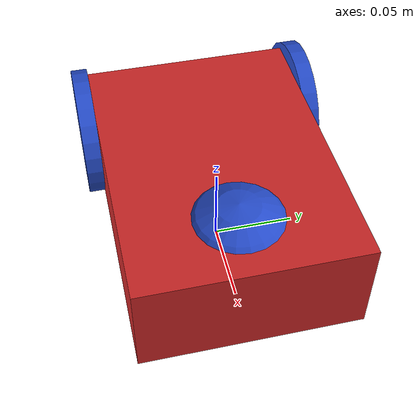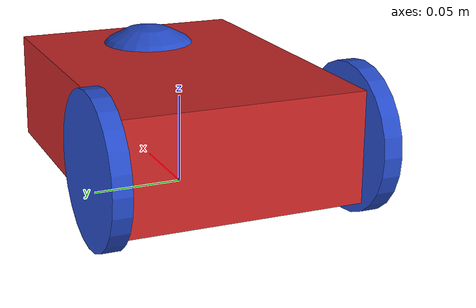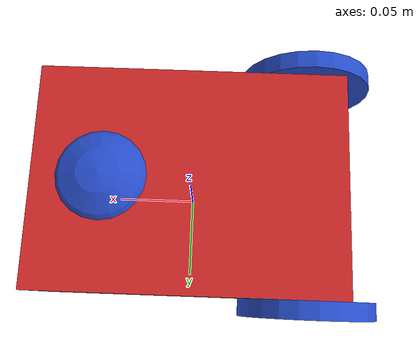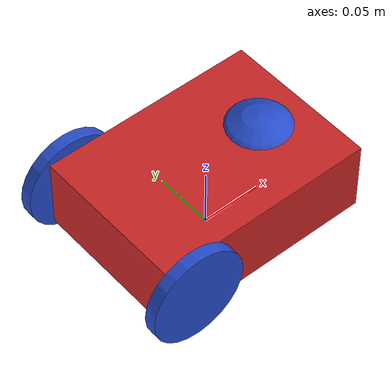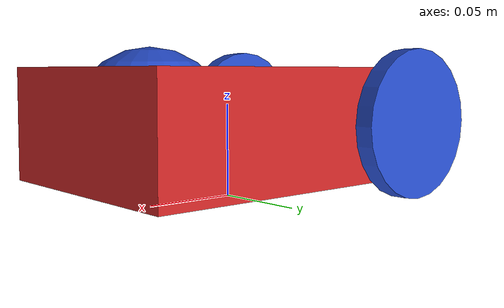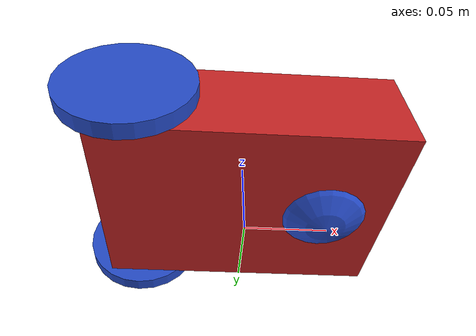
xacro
<?xml version="1.0"?>

<robot name="opponent" xmlns:xacro="http://www.ros.org/wiki/xacro">

    <!--   Geometry and constants   -->

    <!-- Pi -->
    <xacro:property name="pi_const" value="3.14159265" />

    <!-- Body Dimensions -->
    <xacro:property name="a" value="0.18" />
    <xacro:property name="b" value="0.06" />
    <xacro:property name="c" value="0.13" />

    <!-- Wheel and caster radius -->
    <xacro:property name="r" value="0.04" />

    <!-- Wheel width -->
    <xacro:property name="d" value="0.01" />

    <xacro:property name="s1" value="${r}" />
    <xacro:property name="s2" value="${a/2.0-r/2.0}" />
    <xacro:property name="s3" value="${a/2.0-r}" />
    <xacro:property name="s4" value="${c/2.0+d/2.0}" />

    <!--      Mass and inertia      -->

    <!-- Material Density -->
    <!-- body -->
    <xacro:property name="d1" value="1430.0" />
    <!-- wheel -->
    <xacro:property name="d2" value="1430.0" />
    <!-- caster -->
    <xacro:property name="d3" value="1430.0" />

    <!-- Mass -->
    <!-- body cuboid-->
    <xacro:property name="m1" value="${d1*a*b*c}" />
    <!-- wheel cylinder-->
    <xacro:property name="m2" value="${d2*pi_const*r*r*d}" />
    <!-- caster sphere -->
    <xacro:property name="m3" value="${d3*(4.0/3.0)*pi_const*r*r*r}" />

    <!-- Inertia -->
    <!-- body cuboid-->
    <xacro:property name="Ix_body" value="${(1.0/12.0)*m1*(b*b+c*c)}" />
    <xacro:property name="Iy_body" value="${(1.0/12.0)*m1*(a*a+b*b)}" />
    <xacro:property name="Iz_body" value="${(1.0/12.0)*m1*(a*a+c*c)}" />
    <!-- wheel cylinder-->
    <xacro:property name="Iz_wheel" value="${0.5*m2*r*r}" />
    <xacro:property name="I_wheel" value="${(1.0/12.0)*m2*(3.0*r*r+d*d)}" />
    <!-- caster sphere -->
    <xacro:property name="I_caster" value="${(2.0/5.0)*m3*r*r}" />

    <!-- Complete inertia -->
    <!-- body cuboid-->
    <xacro:macro name="inertia_body">
        <inertial>
            <!-- Displacement and orientation of the center of the mass frame of the link with respect to parent coordinate system -->
            <origin rpy="0 0 0" xyz="0 0 ${s1}"/>
            <mass value="${m1}"/>
            <inertia ixx="${Ix_body}" ixy="0.0" ixz="0.0" iyy="${Iy_body}" iyz="0.0" izz="${Iz_body}" />
        </inertial>
    </xacro:macro>

    <!-- wheel cylinder-->
    <xacro:macro name="inertia_wheel">
        <inertial>
            <!-- Displacement and orientation of the center of the mass frame of the link with respect to parent coordinate system -->
            <origin rpy="${pi_const/2.0} 0 0" xyz="0 0 0"/> <!-- rpy in radiants -->
            <mass value="${m2}"/>
            <inertia ixx="${I_wheel}" ixy="0.0" ixz="0.0" iyy="${I_wheel}" iyz="0.0" izz="${Iz_wheel}" />
        </inertial>
    </xacro:macro>

    <!-- caster sphere -->
    <xacro:macro name="inertia_caster">
        <inertial>
            <!-- Displacement and orientation of the center of the mass frame of the link with respect to parent coordinate system -->
            <origin rpy="0 0 0" xyz="0 0 0"/> <!-- rpy in radiants -->
            <mass value="${m3}"/>
            <inertia ixx="${I_caster}" ixy="0.0" ixz="0.0" iyy="${I_caster}" iyz="0.0" izz="${I_caster}" />
        </inertial>
    </xacro:macro>

    <!--  Include additional files  -->

    <!-- Gazebo file for extra Gazebo options and motion driver-->
    <xacro:include filename="$(find robofetz_gazebo)/models/simple_diff_drive_opponent/simple_diff_drive_opponent.gazebo" />

    <!--  Define links and joints   -->

    <!-- Fictious link of the robot - we need to have this link otherwise Gazebo will complain -->
    <link name="base_footprint"> </link>
    <joint name="body_link_joint" type="fixed">
        <parent link="base_footprint"/>
        <child link="body_link"/>
    </joint>

    <!-- Body link of the robot -->
    <link name="body_link">

        <visual>
            <geometry>
                <box size="${a} ${c} ${b}" />
            </geometry>
            <!-- Displacement and orientation of the geometric center of the link with respec to the parent link -->
            <origin rpy="0 0 0" xyz="0 0 ${s1}"/>
        </visual>

        <collision>
            <geometry>
                <box size="${a} ${c} ${b}" />
            </geometry>
            <origin rpy="0 0 0" xyz="0 0 ${s1}"/>
        </collision>

        <xacro:inertia_body/>

    </link>

    <!-- Wheel1 of the robot -->

    <joint name="wheel1_joint" type="continuous" >
        <parent link="body_link"/>
        <child link="wheel1_link"/>
        <origin xyz="${-s2} ${-s4} ${r}" rpy="0 0 0" />
        <axis xyz="0 1 0"/>
        <limit effort="50000" velocity="10"/>
        <dynamics damping="1.0" friction="1.0"/>
    </joint>

    <link name="wheel1_link">
        <visual>
            <origin rpy="${pi_const/2} 0 0" xyz="0 0 0"/>
            <geometry>
                <cylinder length="${d}" radius="${r}"/>
            </geometry>
        </visual>

        <collision>
            <origin rpy="${pi_const/2} 0 0" xyz="0 0 0"/>
            <geometry>
                <cylinder length="${d}" radius="${r}"/>
            </geometry>
        </collision>

        <xacro:inertia_wheel/>

    </link>

    <!-- Wheel2 of the robot -->

    <joint name="wheel2_joint" type="continuous" >
        <parent link="body_link"/>
        <child link="wheel2_link"/>
        <origin xyz="${-s2} ${s4} ${r}" rpy="0 0 0" />
        <axis xyz="0 1 0"/>
        <limit effort="50000" velocity="10"/>
        <dynamics damping="1.0" friction="1.0"/>
    </joint>

    <link name="wheel2_link">
        <visual>
            <origin rpy="${pi_const/2} 0 0" xyz="0 0 0"/>
            <geometry>
                <cylinder length="${d}" radius="${r}"/>
            </geometry>
        </visual>

        <collision>
            <origin rpy="${pi_const/2} 0 0" xyz="0 0 0"/>
            <geometry>
                <cylinder length="${d}" radius="${r}"/>
            </geometry>
        </collision>

        <xacro:inertia_wheel/>

    </link>

    <!-- Caster wheel of the robot -->

    <joint name="caster_joint" type="fixed" >
        <parent link="body_link"/>
        <child link="caster_link"/>
        <origin xyz="${s3} 0 ${r}" rpy="0 0 0" />
    </joint>

    <link name="caster_link">
        <visual>
            <origin rpy="0 0 0" xyz="0 0 0"/>
            <geometry>
                <sphere radius="${r}"/>
            </geometry>
        </visual>

        <collision>
            <origin rpy="0 0 0" xyz="0 0 0"/>
            <geometry>
                <sphere radius="${r}"/>
            </geometry>
        </collision>

        <xacro:inertia_caster/>

    </link>

</robot>
